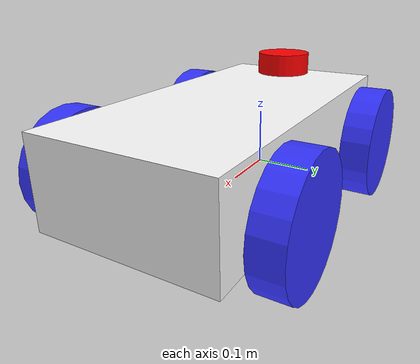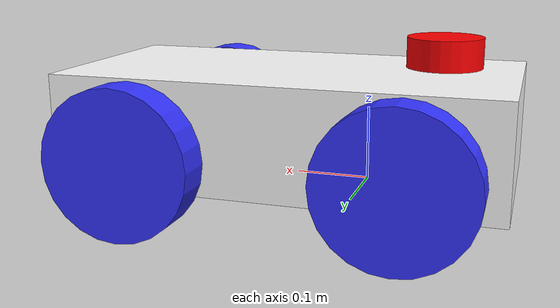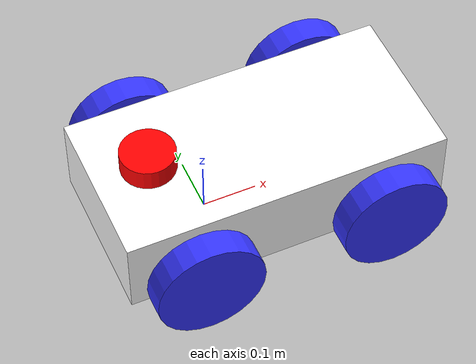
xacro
<?xml version="1.0"?>
<robot xmlns:xacro="http://www.ros.org/wiki/xacro" >
    <xacro:include filename="inertial_macros.xacro" />
    <xacro:include filename="lidar.xacro" />

    <xacro:property name="base_mass" value="46.034" />
    <xacro:property name="wheel_mass" value="2.637" />
    <xacro:property name="wheel_thickness" value="0.05" />
    <xacro:property name="wheel_radius" value="0.1" />
    <xacro:property name="chassis_length" value="0.6" />
    <xacro:property name="chassis_width" value="0.3" />
    <xacro:property name="chassis_height" value="0.15" />

    <!--   base of the robot -->
  <link name="base_link">
  </link>

    <!-- BASE LINK -->
    <joint name="base_footprint_joint" type="fixed">
        <parent link="base_link"/>
        <child link="base_footprint"/>
        <origin xyz="-0.2 0 0" rpy="0.0 0.0 0.0"/>
    </joint>
    <link name="base_footprint">
        <visual>
            <origin xyz="0.3 0 0.075"/>  <!--  changed y to 0.15 from 0 on 21dec -->
            <geometry>
                     <box size="0.6 0.3 0.15"/>
            </geometry>
            <material name="white"/>
        </visual>
        <collision>
            <origin xyz="0.3 0 0.075"/>
            <geometry>
                     <box size="0.6 0.3 0.15"/>
            </geometry>
            <material name="white"/>
        </collision>
        <xacro:inertial_box mass="0.5" x="${chassis_length}" y="${chassis_width}" z="${chassis_height}">
            <origin xyz="${chassis_length/2} 0 ${chassis_height/2}" rpy="0 0 0"/>
        </xacro:inertial_box>
    </link>
    <gazebo reference="chassis">
        <material>Gazebo/Orange</material>
    </gazebo>

    <!-- right front wheel  -->
    <joint name="right_front_wheel_joint" type="continuous">
        <parent link="base_link"/>
        <child link="right_front_wheel"/>
        <origin xyz="0.275 -0.190 0.05" rpy="${pi/2} 0 0" />
        <axis xyz="0 0 1" />
    </joint>

    <link name="right_front_wheel">
        <visual>
            <geometry>
                <cylinder length="${wheel_thickness}" radius="${wheel_radius}"/>
            </geometry>
            <material name="blue"/>
        </visual>
        <collision>
            <geometry>
                <cylinder length="${wheel_thickness}" radius="${wheel_radius}"/>
            </geometry>
            <material name="blue"/>
        </collision>
        <xacro:inertial_cylinder mass="${wheel_mass}" length="${wheel_thickness}" radius="${wheel_radius}">
            <origin xyz="0 0 0" rpy="0 0 0"/>
        </xacro:inertial_cylinder>
    </link>
    <gazebo reference="right_front_wheel">
        <material>Gazebo/Blue</material>
    </gazebo>

    <!-- left front wheel  -->
    <joint name="left_front_wheel_joint" type="continuous">
        <parent link="base_link"/>
        <child link="left_front_wheel"/>
        <origin xyz="0.275 0.190 0.05" rpy="-${pi/2} 0 0" />
        <axis xyz="0 0 1" />
    </joint>

    <link name="left_front_wheel">
        <visual>
            <geometry>
                <cylinder length="${wheel_thickness}" radius="${wheel_radius}"/>
            </geometry>
            <material name="blue"/>
        </visual>
        <collision>
            <geometry>
                <cylinder length="${wheel_thickness}" radius="${wheel_radius}"/>
            </geometry>
            <material name="blue"/>
        </collision>
        <xacro:inertial_cylinder mass="${wheel_mass}" length="${wheel_thickness}" radius="${wheel_radius}">
            <origin xyz="0 0 0" rpy="0 0 0"/>
        </xacro:inertial_cylinder>
    </link>
    <gazebo reference="left_front_wheel">
        <material>Gazebo/Blue</material>
    </gazebo>

    <!-- right back wheel  -->
    <joint name="right_back_wheel_joint" type="continuous">
        <parent link="base_link"/>
        <child link="right_back_wheel"/>
        <origin xyz="-0.075 -0.190 0.05" rpy="${pi/2} 0 0" />
        <axis xyz="0 0 1" />
    </joint>

    <link name="right_back_wheel">
        <visual>
            <geometry>
                <cylinder length="${wheel_thickness}" radius="${wheel_radius}"/>
            </geometry>
            <material name="blue"/>
        </visual>
        <collision>
            <geometry>
                <cylinder length="${wheel_thickness}" radius="${wheel_radius}"/>
            </geometry>
            <material name="blue"/>
        </collision>
        <xacro:inertial_cylinder mass="${wheel_mass}" length="${wheel_thickness}" radius="${wheel_radius}">
            <origin xyz="0 0 0" rpy="0 0 0"/>
        </xacro:inertial_cylinder>
    </link>
    <gazebo reference="right_back_wheel">
        <material>Gazebo/Blue</material>
    </gazebo>

    <!-- left back wheel  -->
    <joint name="left_back_wheel_joint" type="continuous">
        <parent link="base_link"/>
        <child link="left_back_wheel"/>
        <origin xyz="-0.075 0.190 0.05" rpy="-${pi/2} 0 0" />
        <axis xyz="0 0 1" />
    </joint>

    <link name="left_back_wheel">
        <visual>
            <geometry>
                <cylinder length="${wheel_thickness}" radius="${wheel_radius}"/>
            </geometry>
            <material name="blue"/>
        </visual>
        <collision>
            <geometry>
                <cylinder length="${wheel_thickness}" radius="${wheel_radius}"/>
            </geometry>
            <material name="blue"/>
        </collision>
        <xacro:inertial_cylinder mass="${wheel_mass}" length="${wheel_thickness}" radius="${wheel_radius}">
            <origin xyz="0 0 0" rpy="0 0 0"/>
        </xacro:inertial_cylinder>
    </link>
    <gazebo reference="left_back_wheel">
        <material>Gazebo/Blue</material>
    </gazebo>

</robot>

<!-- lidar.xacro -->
<robot xmlns:xacro="http://www.ros.org/wiki/xacro" >

    <material name="white">
      <color rgba="1 1 1 1"/>
    </material>

    <material name="orange">
      <color rgba="1 0.3 0.1 1"/>
    </material>

    <material name="blue">
      <color rgba="0.2 0.2 1 1"/>
    </material>

    <material name="black">
      <color rgba="0 0 0 1"/>
    </material>

    <material name="red">
      <color rgba="1 0 0 1"/>
    </material>

    <!--  lidar  -->
  <joint name="laser_joint" type="fixed">
    <axis xyz="0 1 0"/>
    <origin xyz="0.10 0 0.18" rpy="0 0 0" />
    <parent link="base_footprint"/>
    <child link="laser"/>
  </joint>

  <link name="laser">
     <visual>
      <geometry>
        <cylinder radius="0.05" length="0.04"/>
      </geometry>
      <material name="red"/>
    </visual>
    <collision>
      <geometry>
        <cylinder radius="0.05" length="0.04"/>
      </geometry>
    </collision>
    <xacro:inertial_cylinder mass="0.1" length="0.04" radius="0.05">
      <origin xyz="0 0 0" rpy="0 0 0"/>
    </xacro:inertial_cylinder>
  </link>

  <gazebo reference="laser">
    <sensor name="laser" type="ray">
      <pose> 0 0 0 0 0 0 </pose>
      <visualize>true</visualize>
      <update_rate>30</update_rate>
      <ray>
        <scan>
          <horizontal>
            <samples>720</samples>
            <min_angle>-3.14</min_angle>
            <max_angle>3.14</max_angle>
          </horizontal>
        </scan>
        <range>
          <min>0.2</min>
          <max>6</max>   <!-- chenged from 8 to 6 -->
        </range>
      </ray>
      <plugin name="laser_controller" filename="libgazebo_ros_ray_sensor.so">
        <ros>
          <remapping>~/out:=scan</remapping>
        </ros>
        <output_type>sensor_msgs/LaserScan</output_type>
        <frame_name>laser</frame_name>
      </plugin>
    </sensor>
  </gazebo>

</robot>
